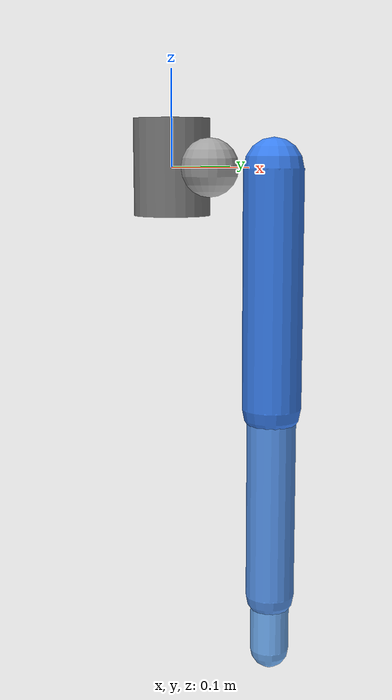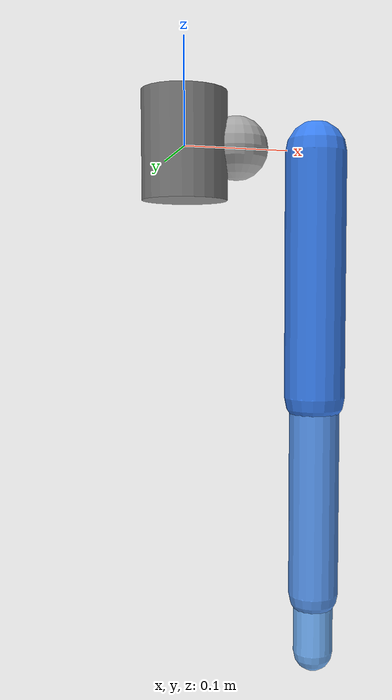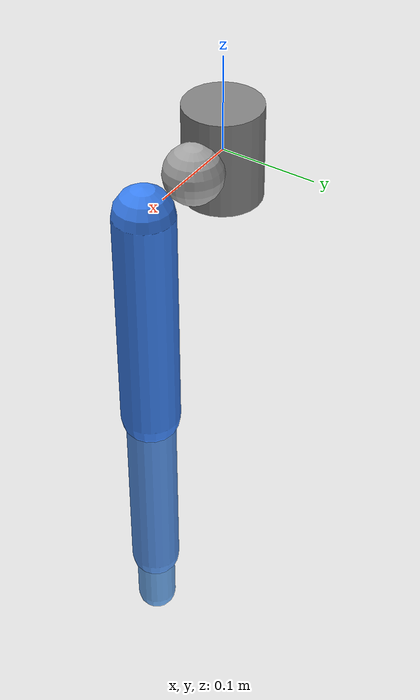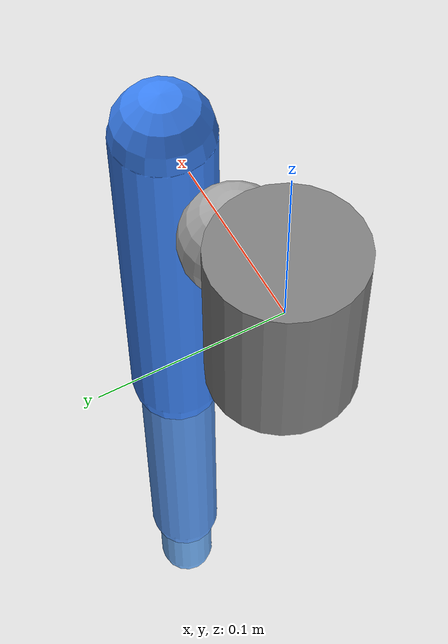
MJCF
<mujoco model="marengo">
  <!-- Mirrors assets/urdf/marengo.urdf (right 5-DOF bench). -->
  <compiler angle="radian"/>
  <option gravity="0 0 -9.81"/>
  <worldbody>
    <body name="base_link">
      <inertial pos="0 0 0" mass="0.001" fullinertia="1e-6 1e-6 1e-6 0 0 0"/>
      <geom type="cylinder" size="0.04 0.05" rgba="0.5 0.5 0.5 1"/>
      <body name="right_shoulder_pitch_link" pos="0 0 0">
        <inertial pos="-0.00378 0.06933 -0.00005" mass="1.0101" fullinertia="0.001536 0.0009527 0.001158 1.603e-05 -2.844e-08 2.068e-07"/>
        <joint name="right_shoulder_pitch" type="hinge" axis="0 1 0" range="-0.9 3.25"/>
        <geom type="sphere" size="0.03" rgba="0.6 0.6 0.6 1"/>
        <body name="right_shoulder_roll_link" pos="0.05 0 0">
          <inertial pos="-0.00209 -0.00001 -0.07141" mass="0.4925" fullinertia="0.0004919 0.0005279 0.0004215 4.083e-07 0.0001046 2.811e-08"/>
          <joint name="right_shoulder_roll" type="hinge" axis="1 0 0" range="-0.05 3.14159"/>
          <geom type="sphere" size="0.03" rgba="0.65 0.65 0.65 1"/>
          <body name="right_upper_arm_link" pos="0.08 0 0">
            <inertial pos="0.00003 -0.00779 -0.21516" mass="0.5075" fullinertia="0.000923 0.001014 0.0003144 -6.824e-09 -4.374e-07 -5.757e-05"/>
            <joint name="right_upper_arm_yaw" type="hinge" axis="0 0 1" range="-1.57 1.57"/>
            <geom type="capsule" fromto="0 0 0 0 0 -0.24" size="0.03" rgba="0.23 0.51 0.96 1"/>
            <body name="right_forearm_link" pos="0 0 -0.24">
              <inertial pos="0.00066 0.00342 -0.06048" mass="0.3910" fullinertia="0.000469 0.0004819 0.0001943 1.038e-06 -9.693e-06 -7.524e-05"/>
              <joint name="right_elbow_pitch" type="hinge" axis="0 1 0" range="-0.50 1.2"/>
              <geom type="capsule" fromto="0 0 0 0 0 -0.2" size="0.025" rgba="0.35 0.6 0.95 1"/>
              <body name="right_hand_link" pos="0 0 -0.20">
                <inertial pos="-0.00003 0 -0.04123" mass="0.0822" fullinertia="0.0001839 0.0001838 6.152e-05 -5.002e-10 -1.688e-07 1.74e-09"/>
                <joint name="right_lower_arm_yaw" type="hinge" axis="0 1 0" range="-1.6 1.6"/>
                <geom type="capsule" fromto="0 0 0 0 0 -0.06" size="0.02" rgba="0.45 0.7 0.98 1"/>
              </body>
            </body>
          </body>
        </body>
      </body>
    </body>
  </worldbody>
</mujoco>
